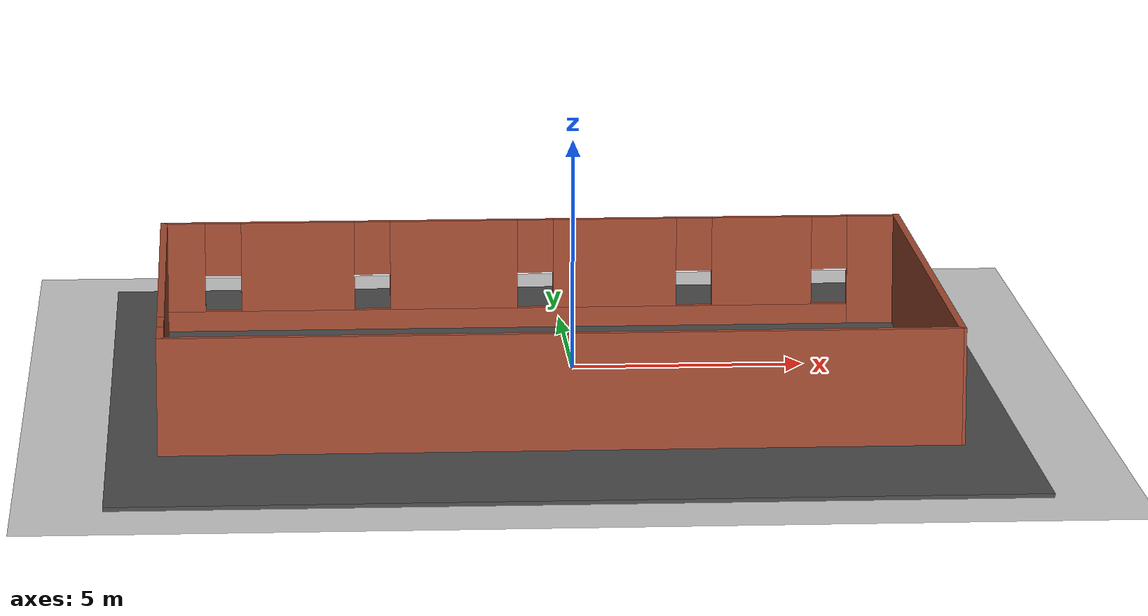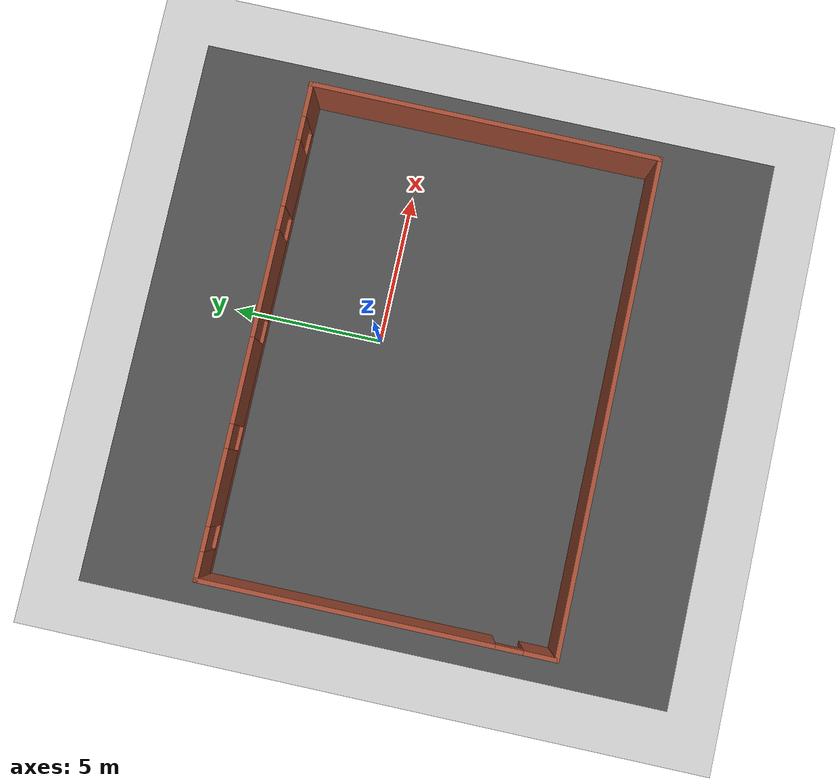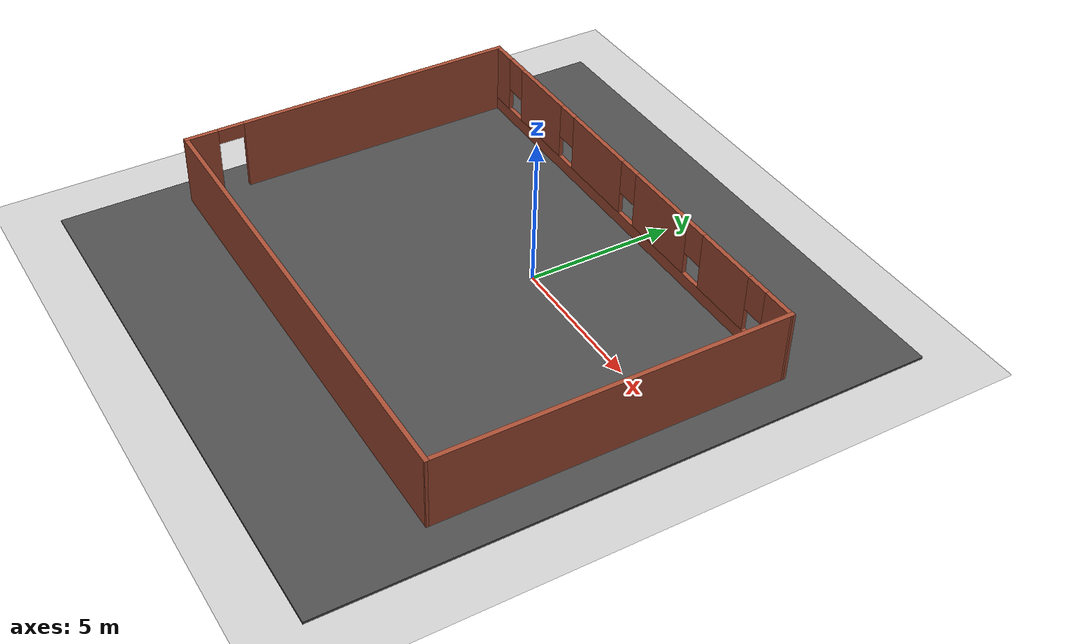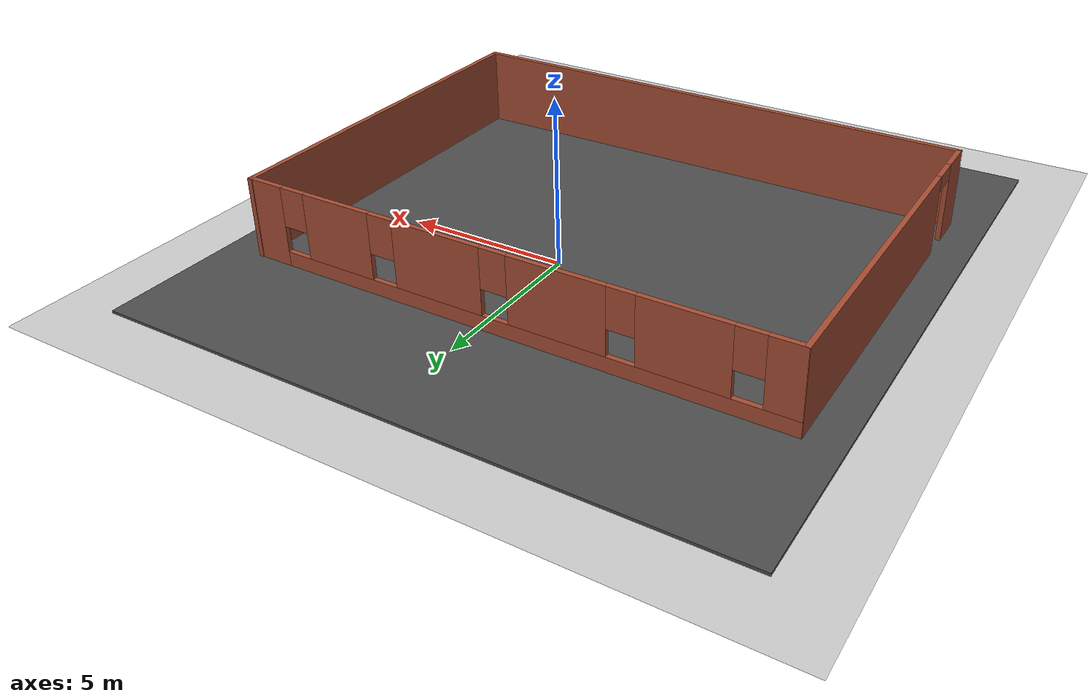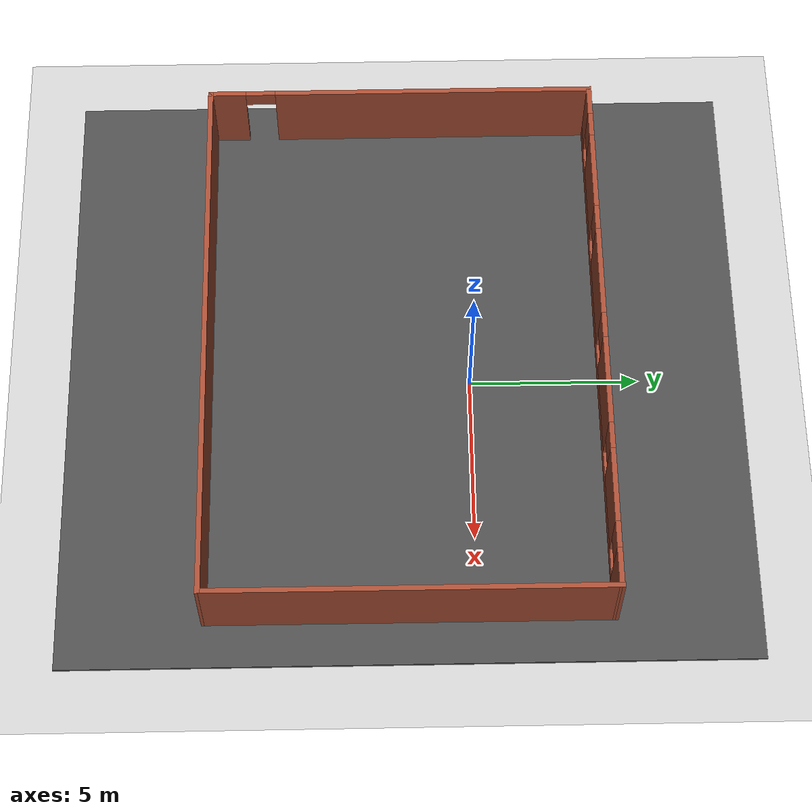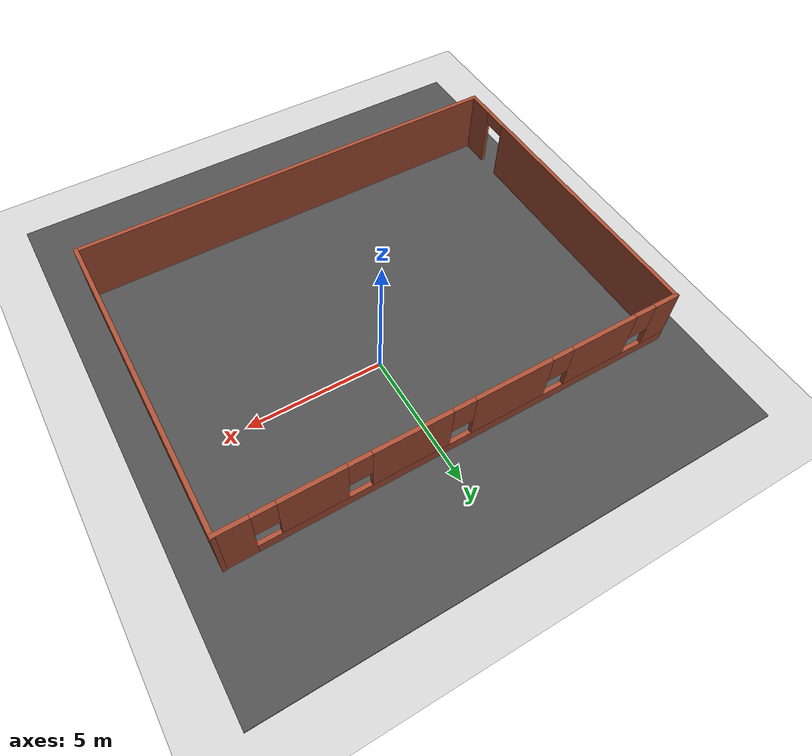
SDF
<sdf version="1.7">
 <world name="default">
  <light name="sun" type="directional">
   <pose>0 0 10 0 -0 0</pose>
   <diffuse>0.8 0.8 0.8 1</diffuse>
   <specular>0.2 0.2 0.2 1</specular>
   <attenuation>
    <range>1000</range>
    <constant>0.9</constant>
    <linear>0.01</linear>
    <quadratic>0.001</quadratic>
   </attenuation>
   <direction>-0.5 0.1 -0.9</direction>
   <spot><inner_angle>0</inner_angle><outer_angle>0</outer_angle><falloff>0</falloff></spot>
  </light>
  <model name="ground_plane">
   <static>1</static>
   <link name="link">
    <collision name="collision">
     <geometry><plane><normal>0 0 1</normal><size>100 100</size></plane></geometry>
     <surface>
      <contact><collide_bitmask>65535</collide_bitmask></contact>
      <friction><ode><mu>100</mu><mu2>50</mu2></ode></friction>
     </surface>
    </collision>
    <visual name="visual">
     <cast_shadows>0</cast_shadows>
     <geometry><plane><normal>0 0 1</normal><size>100 100</size></plane></geometry>
     <material>
      <script><uri>file://media/materials/scripts/gazebo.material</uri><name>Gazebo/Grey</name></script>
     </material>
    </visual>
   </link>
  </model>
  <gravity>0 0 -9.8</gravity>
  <magnetic_field>6e-06 2.3e-05 -4.2e-05</magnetic_field>
  <atmosphere type="adiabatic"/>
  <physics type="ode">
   <max_step_size>0.001</max_step_size>
   <real_time_factor>1</real_time_factor>
   <real_time_update_rate>1000</real_time_update_rate>
  </physics>
  <scene><ambient>0.4 0.4 0.4 1</ambient><background>0.7 0.7 0.7 1</background><shadows>1</shadows></scene>
  <spherical_coordinates>
   <surface_model>EARTH_WGS84</surface_model>
   <latitude_deg>0</latitude_deg>
   <longitude_deg>0</longitude_deg>
   <elevation>0</elevation>
   <heading_deg>0</heading_deg>
  </spherical_coordinates>
  <model name="Test">
   <pose>-0.683476 -1.9137 0 0 -0 0</pose>
   <link name="Wall_10">
    <collision name="Wall_10_Collision">
     <geometry><box><size>16.5 0.15 2.5</size></box></geometry>
     <pose>0 0 1.25 0 -0 0</pose>
    </collision>
    <visual name="Wall_10_Visual">
     <pose>0 0 1.25 0 -0 0</pose>
     <geometry><box><size>16.5 0.15 2.5</size></box></geometry>
     <material>
      <script><uri>file://media/materials/scripts/gazebo.material</uri><name>Gazebo/Bricks</name></script>
      <ambient>1 1 1 1</ambient>
     </material>
     <meta><layer>0</layer></meta>
    </visual>
    <pose>-0.010121 -5.81006 0 0 -0 0</pose>
   </link>
   <link name="Wall_11">
    <collision name="Wall_11_Collision">
     <geometry><box><size>11.7701 0.15 2.5</size></box></geometry>
     <pose>0 0 1.25 0 -0 0</pose>
    </collision>
    <visual name="Wall_11_Visual">
     <pose>0 0 1.25 0 -0 0</pose>
     <geometry><box><size>11.7701 0.15 2.5</size></box></geometry>
     <material>
      <script><uri>file://media/materials/scripts/gazebo.material</uri><name>Gazebo/Bricks</name></script>
      <ambient>1 1 1 1</ambient>
     </material>
     <meta><layer>0</layer></meta>
    </visual>
    <pose>8.17494 0 0 0 -0 1.56906</pose>
   </link>
   <link name="Wall_12">
    <pose>0.009992 5.78994 0 0 -0 3.14159</pose>
    <visual name="Wall_12_Visual_0">
     <pose>-7.65941 0 1.25 0 -0 0</pose>
     <geometry><box><size>1.18118 0.15 2.5</size></box></geometry>
     <material>
      <script><uri>file://media/materials/scripts/gazebo.material</uri><name>Gazebo/Bricks</name></script>
      <ambient>1 1 1 1</ambient>
     </material>
     <meta><layer>0</layer></meta>
    </visual>
    <collision name="Wall_12_Collision_0">
     <geometry><box><size>1.18118 0.15 2.5</size></box></geometry>
     <pose>-7.65941 0 1.25 0 -0 0</pose>
    </collision>
    <visual name="Wall_12_Visual_1">
     <pose>0.590592 0 0.25 0 -0 0</pose>
     <geometry><box><size>15.3188 0.15 0.5</size></box></geometry>
     <material>
      <script><uri>file://media/materials/scripts/gazebo.material</uri><name>Gazebo/Bricks</name></script>
      <ambient>1 1 1 1</ambient>
     </material>
     <meta><layer>0</layer></meta>
    </visual>
    <collision name="Wall_12_Collision_1">
     <geometry><box><size>15.3188 0.15 0.5</size></box></geometry>
     <pose>0.590592 0 0.25 0 -0 0</pose>
    </collision>
    <visual name="Wall_12_Visual_2">
     <pose>-5.15024 0 1.5 0 -0 0</pose>
     <geometry><box><size>2.23715 0.15 2</size></box></geometry>
     <material>
      <script><uri>file://media/materials/scripts/gazebo.material</uri><name>Gazebo/Bricks</name></script>
      <ambient>1 1 1 1</ambient>
     </material>
     <meta><layer>0</layer></meta>
    </visual>
    <collision name="Wall_12_Collision_2">
     <geometry><box><size>2.23715 0.15 2</size></box></geometry>
     <pose>-5.15024 0 1.5 0 -0 0</pose>
    </collision>
    <visual name="Wall_12_Visual_3">
     <pose>-1.85162 0 1.5 0 -0 0</pose>
     <geometry><box><size>2.7601 0.15 2</size></box></geometry>
     <material>
      <script><uri>file://media/materials/scripts/gazebo.material</uri><name>Gazebo/Bricks</name></script>
      <ambient>1 1 1 1</ambient>
     </material>
     <meta><layer>0</layer></meta>
    </visual>
    <collision name="Wall_12_Collision_3">
     <geometry><box><size>2.7601 0.15 2</size></box></geometry>
     <pose>-1.85162 0 1.5 0 -0 0</pose>
    </collision>
    <visual name="Wall_12_Visual_4">
     <pose>1.74871 0 1.5 0 -0 0</pose>
     <geometry><box><size>2.84056 0.15 2</size></box></geometry>
     <material>
      <script><uri>file://media/materials/scripts/gazebo.material</uri><name>Gazebo/Bricks</name></script>
      <ambient>1 1 1 1</ambient>
     </material>
     <meta><layer>0</layer></meta>
    </visual>
    <collision name="Wall_12_Collision_4">
     <geometry><box><size>2.84056 0.15 2</size></box></geometry>
     <pose>1.74871 0 1.5 0 -0 0</pose>
    </collision>
    <visual name="Wall_12_Visual_5">
     <pose>5.22836 0 1.5 0 -0 0</pose>
     <geometry><box><size>2.51874 0.15 2</size></box></geometry>
     <material>
      <script><uri>file://media/materials/scripts/gazebo.material</uri><name>Gazebo/Bricks</name></script>
      <ambient>1 1 1 1</ambient>
     </material>
     <meta><layer>0</layer></meta>
    </visual>
    <collision name="Wall_12_Collision_5">
     <geometry><box><size>2.51874 0.15 2</size></box></geometry>
     <pose>5.22836 0 1.5 0 -0 0</pose>
    </collision>
    <visual name="Wall_12_Visual_6">
     <pose>7.76887 0 1.5 0 -0 0</pose>
     <geometry><box><size>0.962268 0.15 2</size></box></geometry>
     <material>
      <script><uri>file://media/materials/scripts/gazebo.material</uri><name>Gazebo/Bricks</name></script>
      <ambient>1 1 1 1</ambient>
     </material>
     <meta><layer>0</layer></meta>
    </visual>
    <collision name="Wall_12_Collision_6">
     <geometry><box><size>0.962268 0.15 2</size></box></geometry>
     <pose>7.76887 0 1.5 0 -0 0</pose>
    </collision>
    <visual name="Wall_12_Visual_7">
     <pose>-6.66882 0 1.9 0 -0 0</pose>
     <geometry><box><size>0.8 0.15 1.2</size></box></geometry>
     <material>
      <script><uri>file://media/materials/scripts/gazebo.material</uri><name>Gazebo/Bricks</name></script>
      <ambient>1 1 1 1</ambient>
     </material>
     <meta><layer>0</layer></meta>
    </visual>
    <collision name="Wall_12_Collision_7">
     <geometry><box><size>0.8 0.15 1.2</size></box></geometry>
     <pose>-6.66882 0 1.9 0 -0 0</pose>
    </collision>
    <visual name="Wall_12_Visual_8">
     <pose>-3.63167 0 1.9 0 -0 0</pose>
     <geometry><box><size>0.8 0.15 1.2</size></box></geometry>
     <material>
      <script><uri>file://media/materials/scripts/gazebo.material</uri><name>Gazebo/Bricks</name></script>
      <ambient>1 1 1 1</ambient>
     </material>
     <meta><layer>0</layer></meta>
    </visual>
    <collision name="Wall_12_Collision_8">
     <geometry><box><size>0.8 0.15 1.2</size></box></geometry>
     <pose>-3.63167 0 1.9 0 -0 0</pose>
    </collision>
    <visual name="Wall_12_Visual_9">
     <pose>-0.071564 0 1.9 0 -0 0</pose>
     <geometry><box><size>0.8 0.15 1.2</size></box></geometry>
     <material>
      <script><uri>file://media/materials/scripts/gazebo.material</uri><name>Gazebo/Bricks</name></script>
      <ambient>1 1 1 1</ambient>
     </material>
     <meta><layer>0</layer></meta>
    </visual>
    <collision name="Wall_12_Collision_9">
     <geometry><box><size>0.8 0.15 1.2</size></box></geometry>
     <pose>-0.071564 0 1.9 0 -0 0</pose>
    </collision>
    <visual name="Wall_12_Visual_10">
     <pose>3.56899 0 1.9 0 -0 0</pose>
     <geometry><box><size>0.8 0.15 1.2</size></box></geometry>
     <material>
      <script><uri>file://media/materials/scripts/gazebo.material</uri><name>Gazebo/Bricks</name></script>
      <ambient>1 1 1 1</ambient>
     </material>
     <meta><layer>0</layer></meta>
    </visual>
    <collision name="Wall_12_Collision_10">
     <geometry><box><size>0.8 0.15 1.2</size></box></geometry>
     <pose>3.56899 0 1.9 0 -0 0</pose>
    </collision>
    <visual name="Wall_12_Visual_11">
     <pose>6.88773 0 1.9 0 -0 0</pose>
     <geometry><box><size>0.8 0.15 1.2</size></box></geometry>
     <material>
      <script><uri>file://media/materials/scripts/gazebo.material</uri><name>Gazebo/Bricks</name></script>
      <ambient>1 1 1 1</ambient>
     </material>
     <meta><layer>0</layer></meta>
    </visual>
    <collision name="Wall_12_Collision_11">
     <geometry><box><size>0.8 0.15 1.2</size></box></geometry>
     <pose>6.88773 0 1.9 0 -0 0</pose>
    </collision>
   </link>
   <link name="Wall_9">
    <pose>-8.18512 -0.010057 0 0 -0 -1.5708</pose>
    <visual name="Wall_9_Visual_0">
     <pose>-1.02405 0 1.25 0 -0 0</pose>
     <geometry><box><size>9.7019 0.15 2.5</size></box></geometry>
     <material>
      <script><uri>file://media/materials/scripts/gazebo.material</uri><name>Gazebo/Bricks</name></script>
      <ambient>1 1 1 1</ambient>
     </material>
     <meta><layer>0</layer></meta>
    </visual>
    <collision name="Wall_9_Collision_0">
     <geometry><box><size>9.7019 0.15 2.5</size></box></geometry>
     <pose>-1.02405 0 1.25 0 -0 0</pose>
    </collision>
    <visual name="Wall_9_Visual_1">
     <pose>5.30095 0 1.25 0 -0 0</pose>
     <geometry><box><size>1.1481 0.15 2.5</size></box></geometry>
     <material>
      <script><uri>file://media/materials/scripts/gazebo.material</uri><name>Gazebo/Bricks</name></script>
      <ambient>1 1 1 1</ambient>
     </material>
     <meta><layer>0</layer></meta>
    </visual>
    <collision name="Wall_9_Collision_1">
     <geometry><box><size>1.1481 0.15 2.5</size></box></geometry>
     <pose>5.30095 0 1.25 0 -0 0</pose>
    </collision>
    <visual name="Wall_9_Visual_2">
     <pose>4.2769 0 2.25 0 -0 0</pose>
     <geometry><box><size>0.9 0.15 0.5</size></box></geometry>
     <material>
      <script><uri>file://media/materials/scripts/gazebo.material</uri><name>Gazebo/Bricks</name></script>
      <ambient>1 1 1 1</ambient>
     </material>
     <meta><layer>0</layer></meta>
    </visual>
    <collision name="Wall_9_Collision_2">
     <geometry><box><size>0.9 0.15 0.5</size></box></geometry>
     <pose>4.2769 0 2.25 0 -0 0</pose>
    </collision>
   </link>
   <static>1</static>
  </model>
  <model name="asphalt_plane">
   <link name="link">
    <inertial>
     <mass>1</mass>
     <inertia><ixx>1</ixx><ixy>0</ixy><ixz>0</ixz><iyy>1</iyy><iyz>0</iyz><izz>1</izz></inertia>
    </inertial>
    <visual name="visual">
     <cast_shadows>0</cast_shadows>
     <geometry><box><size>18.79 20 0.109366</size></box></geometry>
     <material>
      <script>
       <uri>model://asphalt_plane/materials/scripts</uri>
       <uri>model://asphalt_plane/materials/textures</uri>
       <name>vrc/asphalt</name>
      </script>
      <shader type="pixel"><normal_map>__default__</normal_map></shader>
      <ambient>0.5 0.5 0.5 1</ambient>
      <diffuse>0.5 0.5 0.5 1</diffuse>
      <specular>0.2 0.2 0.2 1</specular>
      <emissive>0 0 0 1</emissive>
     </material>
    </visual>
    <collision name="collision">
     <geometry><box><size>18.79 411.527 0.109366</size></box></geometry>
     <surface>
      <friction>
       <ode><mu>1</mu><mu2>1</mu2><fdir1>0 0 0</fdir1><slip1>0</slip1><slip2>0</slip2></ode>
       <torsional>
        <coefficient>1</coefficient>
        <patch_radius>0</patch_radius>
        <surface_radius>0</surface_radius>
        <use_patch_radius>1</use_patch_radius>
        <ode><slip>0</slip></ode>
       </torsional>
      </friction>
      <bounce><restitution_coefficient>0</restitution_coefficient><threshold>1e+06</threshold></bounce>
      <contact>
       <collide_without_contact>0</collide_without_contact>
       <collide_without_contact_bitmask>1</collide_without_contact_bitmask>
       <collide_bitmask>1</collide_bitmask>
       <ode>
        <soft_cfm>0</soft_cfm>
        <soft_erp>0.2</soft_erp>
        <kp>1e+13</kp>
        <kd>1</kd>
        <max_vel>0.01</max_vel>
        <min_depth>0</min_depth>
       </ode>
       <bullet>
        <split_impulse>1</split_impulse>
        <split_impulse_penetration_threshold>-0.01</split_impulse_penetration_threshold>
        <soft_cfm>0</soft_cfm>
        <soft_erp>0.2</soft_erp>
        <kp>1e+13</kp>
        <kd>1</kd>
       </bullet>
      </contact>
     </surface>
    </collision>
   </link>
   <static>1</static>
   <pose>-0.59115 -1.91898 0 0 -0 0</pose>
  </model>
  <audio><device>default</device></audio>
 </world>
</sdf>
